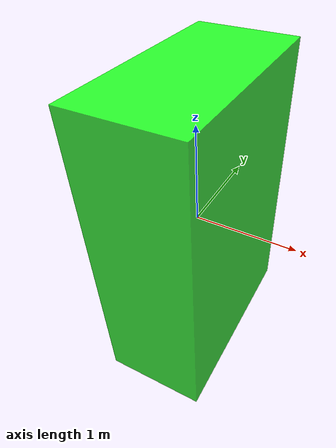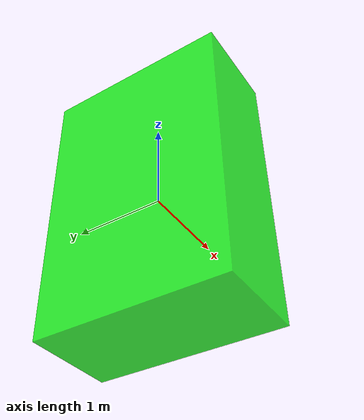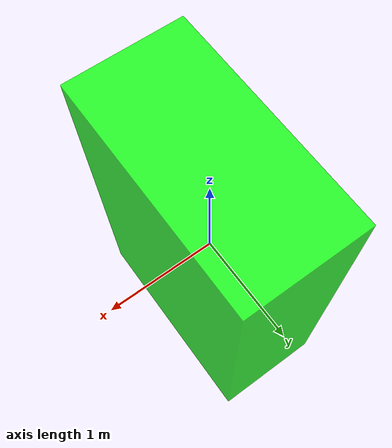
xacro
<?xml version="1.0" encoding="utf-8" ?>
<robot name="box" xmlns:xacro="http://www.ros.org/wiki/xacro">
    <!-- if condition
     -->
    <xacro:macro name="COLOR_TMP" params="color_name">
        <material name="${color_name}">
            <xacro:if value="${color_name=='red'}">
                <color rgba="1 0 0 0.8"></color>
            </xacro:if>
            <xacro:if value="${color_name=='green'}">
                <color rgba="0 1 0 0.8"></color>
            </xacro:if>
            <xacro:if value="${color_name=='blue'}"> <!-- don't have space in condition express -->
                <color rgba="0 0 1 0.8"></color>
            </xacro:if>
        </material>
    </xacro:macro>

    <link name="base_link">
        <visual>
            <geometry>
                <box size="1 2 3"></box>
            </geometry>
            <xacro:COLOR_TMP color_name="green" />
        </visual>
    </link>

</robot>
